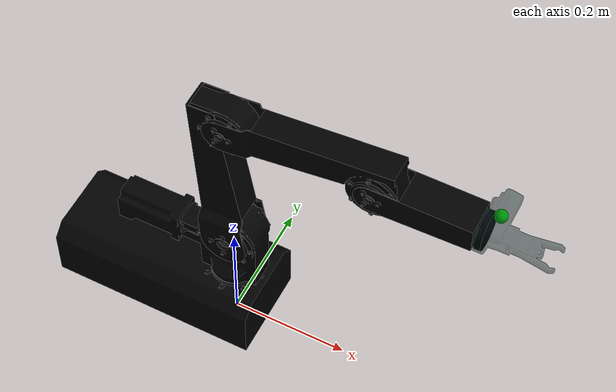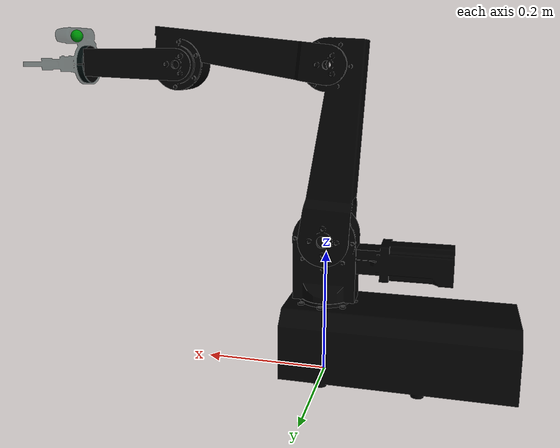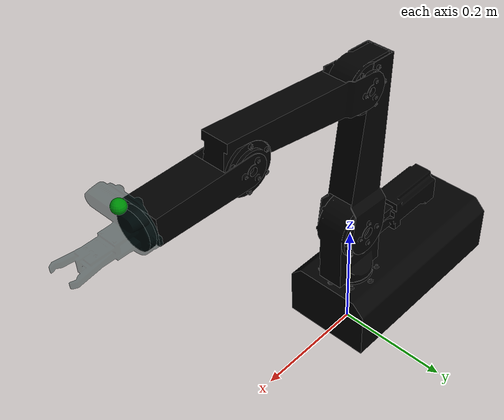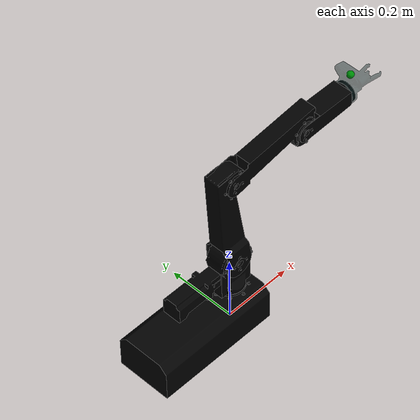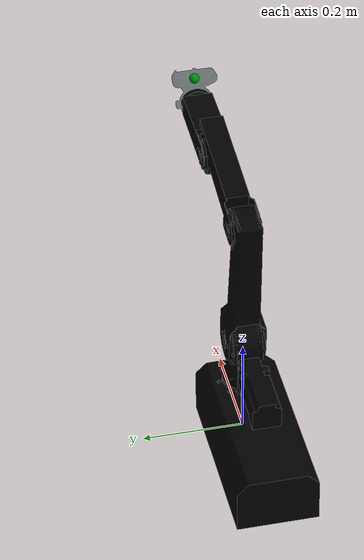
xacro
<?xml version="1.0"?>
<robot xmlns:xacro="http://www.ros.org/wiki/xacro" name="igus_DCi_5S_M">
    <xacro:arg name="initial_positions_file" default="initial_positions.yaml" />

    <!-- Import igus_DCi_5S_M urdf file -->
    <xacro:include filename="$(find cobot_description)/urdf/cobot_description.xacro" />

    <!-- Import control_xacro -->
    <xacro:include filename="igus_DCi_5S_M.ros2_control.xacro" />

    <xacro:igus_DCi_5S_M_ros2_control name="FakeSystem" initial_positions_file="$(arg initial_positions_file)"/>

</robot>

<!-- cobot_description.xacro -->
<robot xmlns:xacro="http://ros.org/wiki/xacro" name="igus_DCi_5S_M">

    <link name="base_link">
      <visual>
        <geometry>
          <mesh filename="package://cobot_description/meshes/Joint0.obj" scale="0.001 0.001 0.001"/>
        </geometry>
        <material name="">
          <color rgba="0 0 0 1" />
        </material>
      </visual>
      <collision>
        <geometry>
          <mesh filename="package://cobot_description/meshes/Joint0Coll.obj" scale="0.001 0.001 0.001" />
        </geometry>
      </collision>
      <inertial>
        <mass value="1.0"/>
        <inertia ixx="1.0" ixy="0.0" ixz="0.0" iyy="1.0" iyz="0.0" izz="1.0"/>
      </inertial>
    </link>

    <link name="link_1">
      <visual>
        <geometry>
          <mesh filename="package://cobot_description/meshes/Joint1.obj" scale="0.001 0.001 0.001"/>
        </geometry>
        <origin rpy="0 0 0" xyz="0 0 0"/>
        <material name="">
          <color rgba="0 0 0 1" />
        </material>
      </visual>
      <collision>
        <geometry>
          <mesh filename="package://cobot_description/meshes/Joint1Coll.obj" scale="0.001 0.001 0.001"/>
        </geometry>
        <origin rpy="0 0 0" xyz="0 0 0"/>
      </collision>
      <inertial>
        <mass value="0.1"/>
        <inertia ixx="0.03" ixy="0.0" ixz="0.0" iyy="0.03" iyz="0.0" izz="0.03"/>
      </inertial>
    </link>
    <joint name="joint_1" type="revolute">
      <parent link="base_link" />
      <child link="link_1" />
      <origin xyz="0 0 0.125" rpy="0 0 0" />
      <axis xyz="0 0 1" />
      <limit lower="${-140 * pi / 180}" upper="${140 * pi / 180}" effort="100" velocity="2.16" />
    </joint>

    <link name="link_2">
      <visual>
        <geometry>
          <mesh filename="package://cobot_description/meshes/Joint2.obj" scale="0.001 0.001 0.001"/>
        </geometry>
        <origin rpy="0 0 0" xyz="0 0 0"/>
        <material name="">
          <color rgba="0 0 0 1" />
        </material>
      </visual>
      <collision>
        <geometry>
          <mesh filename="package://cobot_description/meshes/Joint2Coll.obj" scale="0.001 0.001 0.001"/>
        </geometry>
        <origin rpy="0 0 0" xyz="0 0 0"/>
      </collision>
      <inertial>
        <mass value="0.1"/>
        <inertia ixx="0.03" ixy="0.0" ixz="0.0" iyy="0.03" iyz="0.0" izz="0.03"/>
      </inertial>
    </link>
    <joint name="joint_2" type="revolute">
      <parent link="link_1" />
      <child link="link_2" />
      <origin xyz="0 0 0.10025" rpy="0 0 0" />
      <axis xyz="0 1 0" />
      <limit lower="${-45 * pi / 180}" upper="${70 * pi / 180}" effort="100" velocity="2.16" />
    </joint>

    <link name="link_3">
      <visual>
        <geometry>
          <mesh filename="package://cobot_description/meshes/Joint3.obj" scale="0.001 0.001 0.001"/>
        </geometry>
        <origin rpy="0 0 0" xyz="0 0 0"/>
        <material name="">
          <color rgba="0 0 0 1" />
        </material>
      </visual>
      <collision>
        <geometry>
          <mesh filename="package://cobot_description/meshes/Joint3Coll.obj" scale="0.001 0.001 0.001"/>
        </geometry>
        <origin rpy="0 0 0" xyz="0 0 0"/>
      </collision>
      <inertial>
        <mass value="0.1"/>
        <inertia ixx="0.03" ixy="0.0" ixz="0.0" iyy="0.03" iyz="0.0" izz="0.03"/>
      </inertial>
    </link>
    <joint name="joint_3" type="revolute">
      <parent link="link_2" />
      <child link="link_3" />
      <origin xyz="0 0 0.27" rpy="0 ${pi/2} 0" />
      <axis xyz="0 1 0" />
      <limit lower="${-85 * pi / 180}" upper="${55 * pi / 180}" effort="100" velocity="2.16" />
    </joint>

    <link name="link_4">
      <visual>
        <geometry>
          <mesh filename="package://cobot_description/meshes/Joint4.obj" scale="0.001 0.001 0.001"/>
        </geometry>
        <origin rpy="0 0 0" xyz="0 0 0"/>
        <material name="">
          <color rgba="0 0 0 1"/>
        </material>
      </visual>
      <collision>
        <geometry>
          <mesh filename="package://cobot_description/meshes/Joint4Coll.obj" scale="0.001 0.001 0.001"/>
        </geometry>
        <origin rpy="0 0 0" xyz="0 0 0"/>
      </collision>
      <inertial>
        <mass value="0.1"/>
        <inertia ixx="0.03" ixy="0.0" ixz="0.0" iyy="0.03" iyz="0.0" izz="0.03"/>
      </inertial>
    </link>
    <joint name="joint_4" type="revolute">
      <parent link="link_3" />
      <child link="link_4" />
      <origin xyz="0 0 0.24" rpy="0 0 0"/>
      <axis xyz="0 1 0"/>
      <limit lower="${-10 * pi / 180}" upper="${120 * pi / 180}" effort="100" velocity="2.16"/>
    </joint>

    <link name="link_5">
      <visual>
        <geometry>
          <mesh filename="package://cobot_description/meshes/Joint5.obj" scale="0.001 0.001 0.001"/>
        </geometry>
        <origin rpy="0 0 0" xyz="0 0 0"/>
        <material name="">
          <color rgba="0 0 0 1" />
        </material>
      </visual>
      <collision>
        <geometry>
          <mesh filename="package://cobot_description/meshes/Joint5Coll.obj" scale="0.001 0.001 0.001"/>
        </geometry>
        <origin rpy="0 0 0" xyz="0 0 0"/>
      </collision>
      <inertial>
        <mass value="0.1"/>
        <inertia ixx="0.03" ixy="0.0" ixz="0.0" iyy="0.03" iyz="0.0" izz="0.03"/>
      </inertial>
    </link>
    <joint name="joint_5" type="revolute">
      <parent link="link_4" />
      <child link="link_5" />
      <origin xyz="0 0 0.16" rpy="0 0 0"/>
      <axis xyz="0 0 1"/>
      <limit lower="${-pi}" upper="${pi}" effort="100" velocity="2.16"/>
    </joint>

    <link name="link_tool">
      <visual>
        <geometry>
          <mesh filename="package://cobot_description/meshes/link_tool.STL" />
        </geometry>
        <origin rpy="0 0 0" xyz="0 0 0"/>
        <material name="">
          <color rgba="0.0 0.1 0.1 0.45" />
        </material>
      </visual>
      <collision>
        <geometry>
          <mesh filename="package://cobot_description/meshes/link_tool.STL" />
        </geometry>
        <origin rpy="0 0 0" xyz="0 0 0"/>
      </collision>
      <inertial>
        <mass value="0.1"/>
        <inertia ixx="0.03" ixy="0.0" ixz="0.0" iyy="0.03" iyz="0.0" izz="0.03"/>
      </inertial>
    </link>
    <joint name="joint_tool" type="fixed">
      <parent link="link_5" />
      <child link="link_tool" />
      <origin xyz="0 0 0.1106" rpy="0 0 0"/>
      <axis xyz="0 0 0"/>
    </joint>

    <!-- khop ao -->
    <link name="virtual_link">
    </link>
    <joint name="virtual_joint" type="revolute">
      <parent link="link_tool"/>
      <child link="virtual_link"/>
      <origin xyz="0 0 0" rpy="0 0 0"/>
      <axis xyz="1 0 0"/>
      <limit effort="100" lower="${-30 * pi / 180}" upper="${30 * pi / 180}" velocity="2.16"/>
    </joint>
    <!-- khop ao -->

    <link name="realsense_link">
    </link>

    <joint name="realsense_joint" type="fixed">
      <parent link="link_5"/>
      <child link="realsense_link"/>
      <origin xyz="-0.046 0 0.025 " rpy="0 -1.570796327 0"/>
    </joint>

    <joint name="camera_color_frame_joint" type="fixed">
      <parent link="realsense_link"/>
      <child link="camera_color_frame"/>
      <origin xyz="0 0 0" rpy="0 0 0"/>
    </joint>

    <link name="camera_color_frame">
      <visual>
        <geometry>
          <sphere radius="0.01"/>
        </geometry>
        <material name="green">
          <color rgba="0 1 0 1"/>
        </material>
      </visual>
    </link>

    <joint name="camera_depth_frame_joint" type="fixed">
      <parent link="realsense_link"/>
      <child link="camera_depth_frame"/>
      <origin xyz="0 0 0" rpy="0 0 0"/>
    </joint>

    <link name="camera_depth_frame">
      <visual>
        <geometry>
          <sphere radius="0.01"/>
        </geometry>
        <material name="green">
          <color rgba="0 1 0 1"/>
        </material>
      </visual>
    </link>

    <joint name="camera_link_joint" type="fixed">
      <parent link="realsense_link"/>
      <child link="camera_link"/>
      <origin xyz="0 0 0" rpy="0 0 0"/>
    </joint>

    <link name="camera_link">
      <visual>
        <geometry>
          <sphere radius="0.01"/>
        </geometry>
        <material name="green">
          <color rgba="0 1 0 1"/>
        </material>
      </visual>
    </link>

</robot>
